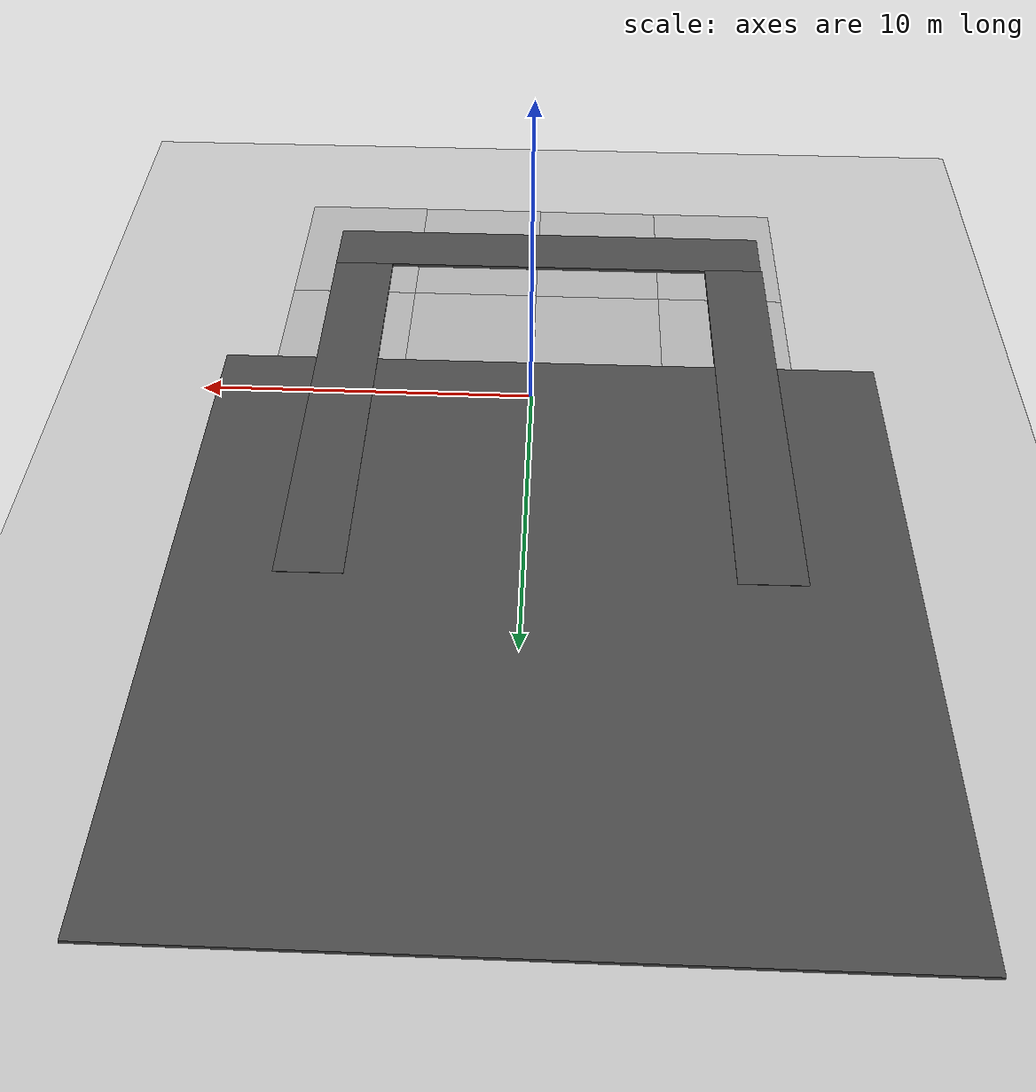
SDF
<sdf version="1.7">
 <world name="default">
  <light name="sun" type="directional">
   <pose>0 0 10 0 -0 0</pose>
   <diffuse>0.8 0.8 0.8 1</diffuse>
   <specular>0.2 0.2 0.2 1</specular>
   <attenuation>
    <range>1000</range>
    <constant>0.9</constant>
    <linear>0.01</linear>
    <quadratic>0.001</quadratic>
   </attenuation>
   <direction>-0.5 0.1 -0.9</direction>
   <spot><inner_angle>0</inner_angle><outer_angle>0</outer_angle><falloff>0</falloff></spot>
  </light>
  <model name="ground_plane">
   <static>1</static>
   <link name="link">
    <collision name="collision">
     <geometry><plane><normal>0 0 1</normal><size>100 100</size></plane></geometry>
     <surface><friction><ode><mu>100</mu><mu2>50</mu2></ode></friction></surface>
    </collision>
    <visual name="visual">
     <cast_shadows>0</cast_shadows>
     <geometry><plane><normal>0 0 1</normal><size>100 100</size></plane></geometry>
     <material>
      <script><uri>file://media/materials/scripts/gazebo.material</uri><name>Gazebo/Grey</name></script>
     </material>
    </visual>
   </link>
  </model>
  <gravity>0 0 -9.8</gravity>
  <magnetic_field>6e-06 2.3e-05 -4.2e-05</magnetic_field>
  <atmosphere type="adiabatic"/>
  <physics type="ode">
   <max_step_size>0.001</max_step_size>
   <real_time_factor>1</real_time_factor>
   <real_time_update_rate>1000</real_time_update_rate>
  </physics>
  <scene><ambient>0.4 0.4 0.4 1</ambient><background>0.7 0.7 0.7 1</background><shadows>1</shadows></scene>
  <audio><device>default</device></audio>
  <spherical_coordinates>
   <surface_model>EARTH_WGS84</surface_model>
   <latitude_deg>0</latitude_deg>
   <longitude_deg>0</longitude_deg>
   <elevation>0</elevation>
   <heading_deg>0</heading_deg>
  </spherical_coordinates>
  <model name="mud_box">
   <static>1</static>
   <link name="link">
    <collision name="collision"><geometry><box><size>8 10 0.2</size></box></geometry></collision>
    <visual name="visual_1">
     <pose>-2 2.5 0 0 -0 0</pose>
     <cast_shadows>0</cast_shadows>
     <geometry><box><size>4 5 0.2</size></box></geometry>
     <material>
      <script>
       <uri>model://mud_box/materials/scripts</uri>
       <uri>model://mud_box/materials/textures</uri>
       <name>vrc/mud</name>
      </script>
     </material>
    </visual>
    <visual name="visual_2">
     <pose>2 2.5 0 0 -0 0</pose>
     <cast_shadows>0</cast_shadows>
     <geometry><box><size>4 5 0.2</size></box></geometry>
     <material>
      <script>
       <uri>model://mud_box/materials/scripts</uri>
       <uri>model://mud_box/materials/textures</uri>
       <name>vrc/mud</name>
      </script>
     </material>
    </visual>
    <visual name="visual_3">
     <pose>2 -2.5 0 0 -0 0</pose>
     <cast_shadows>0</cast_shadows>
     <geometry><box><size>4 5 0.2</size></box></geometry>
     <material>
      <script>
       <uri>model://mud_box/materials/scripts</uri>
       <uri>model://mud_box/materials/textures</uri>
       <name>vrc/mud</name>
      </script>
     </material>
    </visual>
    <visual name="visual_4">
     <pose>-2 -2.5 0 0 -0 0</pose>
     <cast_shadows>0</cast_shadows>
     <geometry><box><size>4 5 0.2</size></box></geometry>
     <material>
      <script>
       <uri>model://mud_box/materials/scripts</uri>
       <uri>model://mud_box/materials/textures</uri>
       <name>vrc/mud</name>
      </script>
     </material>
    </visual>
   </link>
   <pose>3.93324 4.99029 0 0 -0 0</pose>
  </model>
  <model name="mud_box_0">
   <static>1</static>
   <link name="link">
    <collision name="collision"><geometry><box><size>8 10 0.2</size></box></geometry></collision>
    <visual name="visual_1">
     <pose>-2 2.5 0 0 -0 0</pose>
     <cast_shadows>0</cast_shadows>
     <geometry><box><size>4 5 0.2</size></box></geometry>
     <material>
      <script>
       <uri>model://mud_box/materials/scripts</uri>
       <uri>model://mud_box/materials/textures</uri>
       <name>vrc/mud</name>
      </script>
     </material>
    </visual>
    <visual name="visual_2">
     <pose>2 2.5 0 0 -0 0</pose>
     <cast_shadows>0</cast_shadows>
     <geometry><box><size>4 5 0.2</size></box></geometry>
     <material>
      <script>
       <uri>model://mud_box/materials/scripts</uri>
       <uri>model://mud_box/materials/textures</uri>
       <name>vrc/mud</name>
      </script>
     </material>
    </visual>
    <visual name="visual_3">
     <pose>2 -2.5 0 0 -0 0</pose>
     <cast_shadows>0</cast_shadows>
     <geometry><box><size>4 5 0.2</size></box></geometry>
     <material>
      <script>
       <uri>model://mud_box/materials/scripts</uri>
       <uri>model://mud_box/materials/textures</uri>
       <name>vrc/mud</name>
      </script>
     </material>
    </visual>
    <visual name="visual_4">
     <pose>-2 -2.5 0 0 -0 0</pose>
     <cast_shadows>0</cast_shadows>
     <geometry><box><size>4 5 0.2</size></box></geometry>
     <material>
      <script>
       <uri>model://mud_box/materials/scripts</uri>
       <uri>model://mud_box/materials/textures</uri>
       <name>vrc/mud</name>
      </script>
     </material>
    </visual>
   </link>
   <pose>-4.08498 4.9337 0 0 -0 0</pose>
  </model>
  <model name="mud_box_1">
   <static>1</static>
   <link name="link">
    <collision name="collision"><geometry><box><size>8 10 0.2</size></box></geometry></collision>
    <visual name="visual_1">
     <pose>-2 2.5 0 0 -0 0</pose>
     <cast_shadows>0</cast_shadows>
     <geometry><box><size>4 5 0.2</size></box></geometry>
     <material>
      <script>
       <uri>model://mud_box/materials/scripts</uri>
       <uri>model://mud_box/materials/textures</uri>
       <name>vrc/mud</name>
      </script>
     </material>
    </visual>
    <visual name="visual_2">
     <pose>2 2.5 0 0 -0 0</pose>
     <cast_shadows>0</cast_shadows>
     <geometry><box><size>4 5 0.2</size></box></geometry>
     <material>
      <script>
       <uri>model://mud_box/materials/scripts</uri>
       <uri>model://mud_box/materials/textures</uri>
       <name>vrc/mud</name>
      </script>
     </material>
    </visual>
    <visual name="visual_3">
     <pose>2 -2.5 0 0 -0 0</pose>
     <cast_shadows>0</cast_shadows>
     <geometry><box><size>4 5 0.2</size></box></geometry>
     <material>
      <script>
       <uri>model://mud_box/materials/scripts</uri>
       <uri>model://mud_box/materials/textures</uri>
       <name>vrc/mud</name>
      </script>
     </material>
    </visual>
    <visual name="visual_4">
     <pose>-2 -2.5 0 0 -0 0</pose>
     <cast_shadows>0</cast_shadows>
     <geometry><box><size>4 5 0.2</size></box></geometry>
     <material>
      <script>
       <uri>model://mud_box/materials/scripts</uri>
       <uri>model://mud_box/materials/textures</uri>
       <name>vrc/mud</name>
      </script>
     </material>
    </visual>
   </link>
   <pose>3.9689 -5.03371 0 0 -0 0</pose>
  </model>
  <model name="mud_box_2">
   <static>1</static>
   <link name="link">
    <collision name="collision"><geometry><box><size>8 10 0.2</size></box></geometry></collision>
    <visual name="visual_1">
     <pose>-2 2.5 0 0 -0 0</pose>
     <cast_shadows>0</cast_shadows>
     <geometry><box><size>4 5 0.2</size></box></geometry>
     <material>
      <script>
       <uri>model://mud_box/materials/scripts</uri>
       <uri>model://mud_box/materials/textures</uri>
       <name>vrc/mud</name>
      </script>
     </material>
    </visual>
    <visual name="visual_2">
     <pose>2 2.5 0 0 -0 0</pose>
     <cast_shadows>0</cast_shadows>
     <geometry><box><size>4 5 0.2</size></box></geometry>
     <material>
      <script>
       <uri>model://mud_box/materials/scripts</uri>
       <uri>model://mud_box/materials/textures</uri>
       <name>vrc/mud</name>
      </script>
     </material>
    </visual>
    <visual name="visual_3">
     <pose>2 -2.5 0 0 -0 0</pose>
     <cast_shadows>0</cast_shadows>
     <geometry><box><size>4 5 0.2</size></box></geometry>
     <material>
      <script>
       <uri>model://mud_box/materials/scripts</uri>
       <uri>model://mud_box/materials/textures</uri>
       <name>vrc/mud</name>
      </script>
     </material>
    </visual>
    <visual name="visual_4">
     <pose>-2 -2.5 0 0 -0 0</pose>
     <cast_shadows>0</cast_shadows>
     <geometry><box><size>4 5 0.2</size></box></geometry>
     <material>
      <script>
       <uri>model://mud_box/materials/scripts</uri>
       <uri>model://mud_box/materials/textures</uri>
       <name>vrc/mud</name>
      </script>
     </material>
    </visual>
   </link>
   <pose>-4.01021 -5.01534 0 0 -0 0</pose>
  </model>
  <model name="asphalt_plane">
   <static>1</static>
   <link name="link">
    <collision name="collision"><geometry><box><size>19.9999 20 0.1</size></box></geometry></collision>
    <visual name="visual">
     <cast_shadows>0</cast_shadows>
     <geometry><box><size>19.9999 20 0.1</size></box></geometry>
     <material>
      <script>
       <uri>model://asphalt_plane/materials/scripts</uri>
       <uri>model://asphalt_plane/materials/textures</uri>
       <name>vrc/asphalt</name>
      </script>
     </material>
    </visual>
   </link>
   <pose>-0.483975 8.6362 0.178722 0 -0 0</pose>
  </model>
  <model name="asphalt_plane_clone">
   <static>1</static>
   <link name="link">
    <collision name="collision"><geometry><box><size>14.2126 1.90156 0.1</size></box></geometry></collision>
    <visual name="visual">
     <cast_shadows>0</cast_shadows>
     <geometry><box><size>14.2126 1.90156 0.1</size></box></geometry>
     <material>
      <script>
       <uri>model://asphalt_plane/materials/scripts</uri>
       <uri>model://asphalt_plane/materials/textures</uri>
       <name>vrc/asphalt</name>
      </script>
     </material>
    </visual>
   </link>
   <pose>-6.59144 0.595338 0.192268 -0.000127 0.00027 1.57642</pose>
  </model>
  <model name="asphalt_plane_clone_clone">
   <static>1</static>
   <link name="link">
    <collision name="collision"><geometry><box><size>14.2126 1.90156 0.1</size></box></geometry></collision>
    <visual name="visual">
     <cast_shadows>0</cast_shadows>
     <geometry><box><size>14.2126 1.90156 0.1</size></box></geometry>
     <material>
      <script>
       <uri>model://asphalt_plane/materials/scripts</uri>
       <uri>model://asphalt_plane/materials/textures</uri>
       <name>vrc/asphalt</name>
      </script>
     </material>
    </visual>
   </link>
   <pose>5.74797 0.651005 0.192214 -0.000127 0.00027 1.57642</pose>
  </model>
  <model name="asphalt_plane_clone_0">
   <static>1</static>
   <link name="link">
    <collision name="collision"><geometry><box><size>14.2126 1.90156 0.1</size></box></geometry></collision>
    <visual name="visual">
     <cast_shadows>0</cast_shadows>
     <geometry><box><size>14.2126 1.90156 0.1</size></box></geometry>
     <material>
      <script>
       <uri>model://asphalt_plane/materials/scripts</uri>
       <uri>model://asphalt_plane/materials/textures</uri>
       <name>vrc/asphalt</name>
      </script>
     </material>
    </visual>
   </link>
   <pose>-0.36042 -7.42471 0.178722 0 -0 0</pose>
  </model>
 </world>
</sdf>
